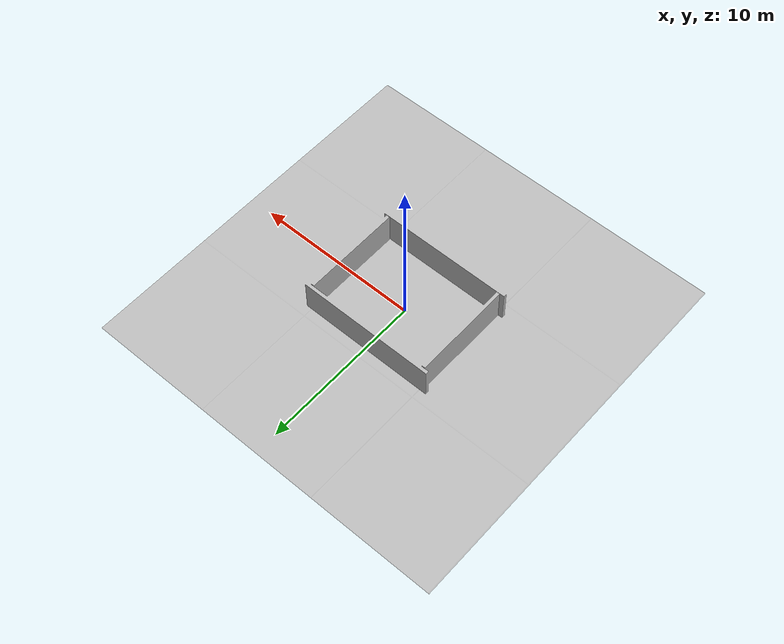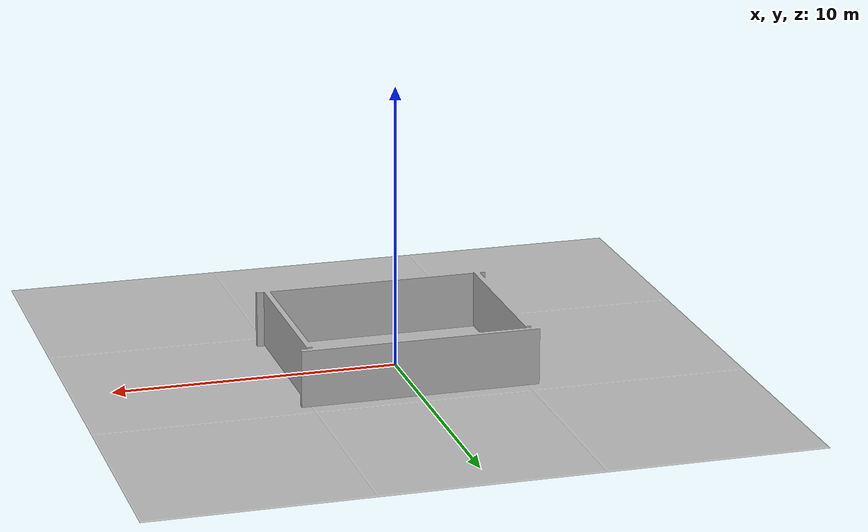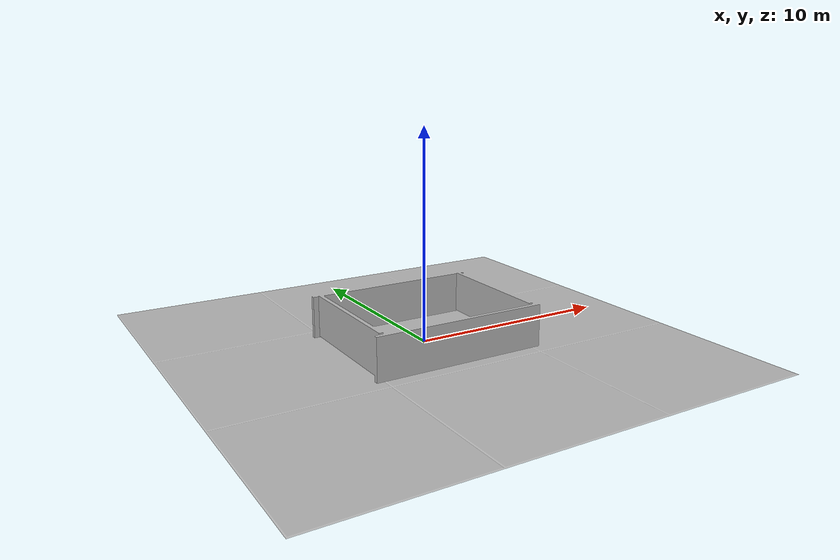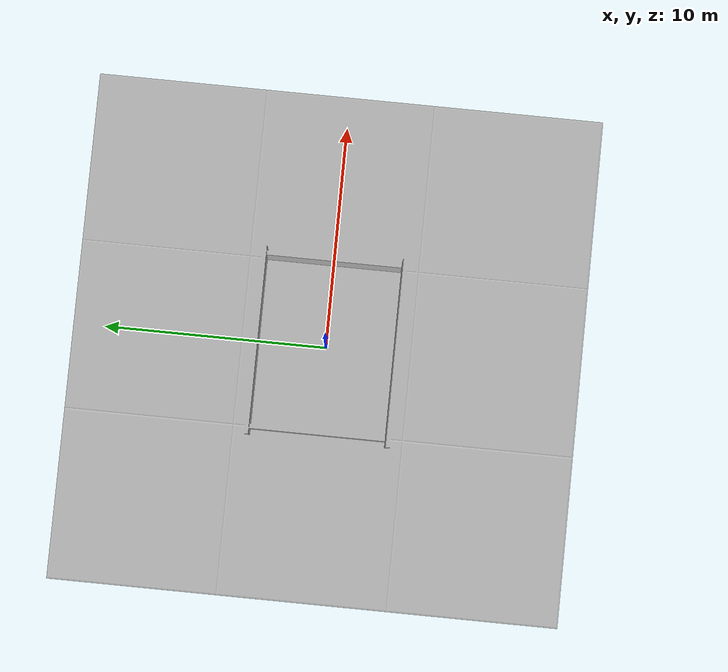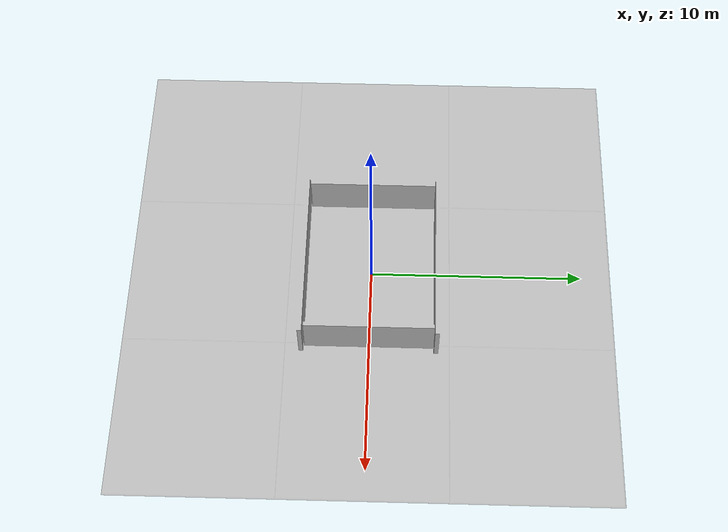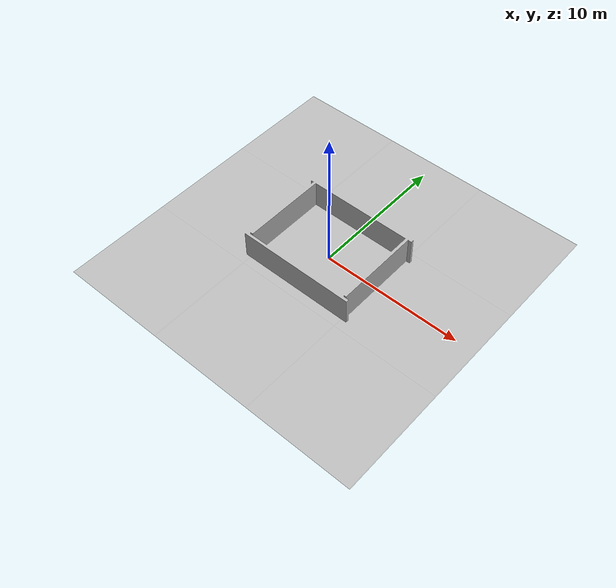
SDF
<sdf version="1.6">
 <world name="default">
  <gravity>0 0 -9.8</gravity>
  <magnetic_field>6e-06 2.3e-05 -4.2e-05</magnetic_field>
  <atmosphere type="adiabatic"/>
  <physics name="default_physics" default="0" type="ode">
   <max_step_size>0.001</max_step_size>
   <real_time_factor>1</real_time_factor>
   <real_time_update_rate>1000</real_time_update_rate>
  </physics>
  <scene><ambient>0.4 0.4 0.4 1</ambient><background>0.7 0.7 0.7 1</background><shadows>1</shadows></scene>
  <audio><device>default</device></audio>
  <spherical_coordinates>
   <surface_model>EARTH_WGS84</surface_model>
   <latitude_deg>0</latitude_deg>
   <longitude_deg>0</longitude_deg>
   <elevation>0</elevation>
   <heading_deg>0</heading_deg>
  </spherical_coordinates>
  <model name="plane">
   <static>1</static>
   <link name="link">
    <collision name="collision">
     <pose>0 0 0.016 0 0 0</pose>
     <geometry><box><size>22.938 22.954 0.016</size></box></geometry>
    </collision>
    <visual name="visual">
     <cast_shadows>0</cast_shadows>
     <geometry>
      <mesh><uri>model://floreano_box/meshes/emptyworldground.dae</uri><scale>1 1 1</scale></mesh>
     </geometry>
    </visual>
    <self_collide>1</self_collide>
   </link>
  </model>
  <light name="pointlight_0" type="point">
   <diffuse>1.0 1.0 1.0 1</diffuse>
   <specular>0 0 0 1</specular>
   <attenuation>
    <range>60</range>
    <constant>0.0</constant>
    <linear>0.0</linear>
    <quadratic>0.000</quadratic>
   </attenuation>
   <direction>0 0 -1</direction>
  </light>
 </world>
</sdf>
